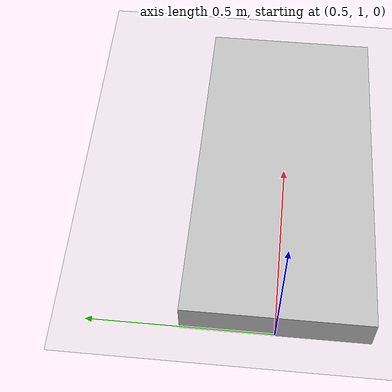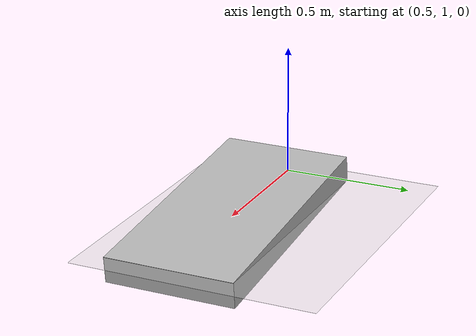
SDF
<?xml version="1.0" ?>
<!--
  Gazebo Sim (Harmonic / gz-sim8): inline ground + sun. Classic model:// URIs are not resolved here.
  Based on gz-sim examples/worlds/empty.sdf
-->
<sdf version="1.6">
  <world name="default">
    <physics name="1ms" type="ignored">
      <max_step_size>0.001</max_step_size>
      <real_time_factor>1.0</real_time_factor>
    </physics>

    <plugin filename="gz-sim-physics-system" name="gz::sim::systems::Physics"/>
    <plugin filename="gz-sim-imu-system" name="gz::sim::systems::Imu"/>
    <plugin filename="gz-sim-user-commands-system" name="gz::sim::systems::UserCommands"/>
    <plugin filename="gz-sim-scene-broadcaster-system" name="gz::sim::systems::SceneBroadcaster"/>
    <plugin filename="gz-sim-contact-system" name="gz::sim::systems::Contact"/>

    <light type="directional" name="sun">
      <cast_shadows>true</cast_shadows>
      <pose>0 0 10 0 0 0</pose>
      <diffuse>0.8 0.8 0.8 1</diffuse>
      <specular>0.2 0.2 0.2 1</specular>
      <attenuation>
        <range>1000</range>
        <constant>0.9</constant>
        <linear>0.01</linear>
        <quadratic>0.001</quadratic>
      </attenuation>
      <direction>-0.5 0.1 -0.9</direction>
    </light>

    <model name="ground_plane">
      <static>true</static>
      <link name="link">
        <collision name="collision">
          <geometry>
            <plane>
              <normal>0 0 1</normal>
              <size>100 100</size>
            </plane>
          </geometry>
          <surface>
            <friction>
              <ode>
                <mu>1.0</mu>
                <mu2>1.0</mu2>
              </ode>
            </friction>
          </surface>
        </collision>
        <visual name="visual">
          <geometry>
            <plane>
              <normal>0 0 1</normal>
              <size>100 100</size>
            </plane>
          </geometry>
          <material>
            <ambient>0.8 0.8 0.8 1</ambient>
            <diffuse>0.8 0.8 0.8 1</diffuse>
            <specular>0.8 0.8 0.8 1</specular>
          </material>
        </visual>
      </link>
    </model>

    <model name="box">
      <static>true</static>
      <pose>1 1 0 0 0.1 0</pose>
      <link name="link">
        <collision name="collision">
          <geometry>
            <box>
              <size>1 0.5 0.1</size>
            </box>
          </geometry>
        </collision>
        <visual name="visual">
          <geometry>
            <box>
              <size>1 0.5 0.1</size>
            </box>
          </geometry>
        </visual>
      </link>
    </model>
  </world>
</sdf>
